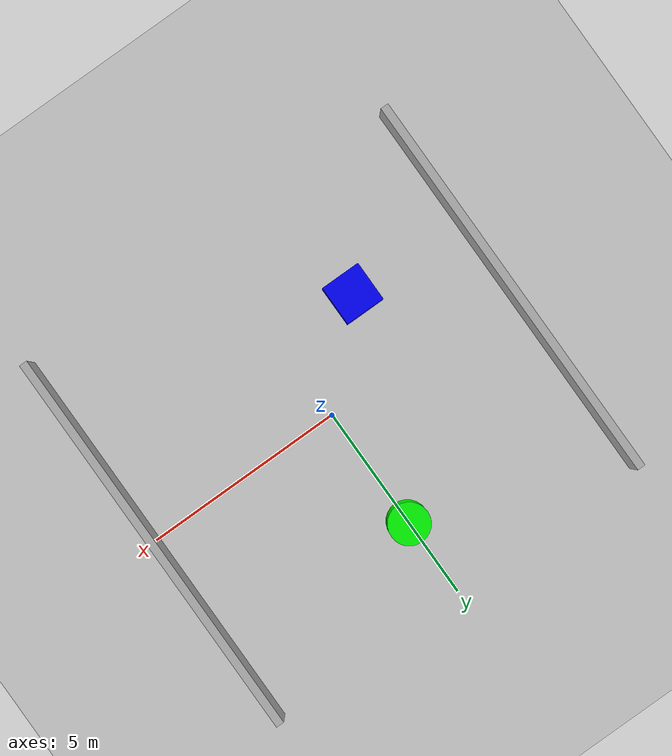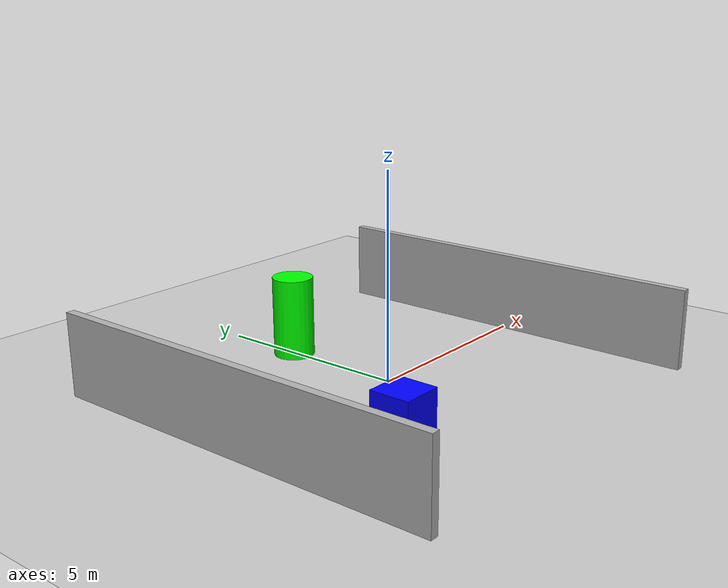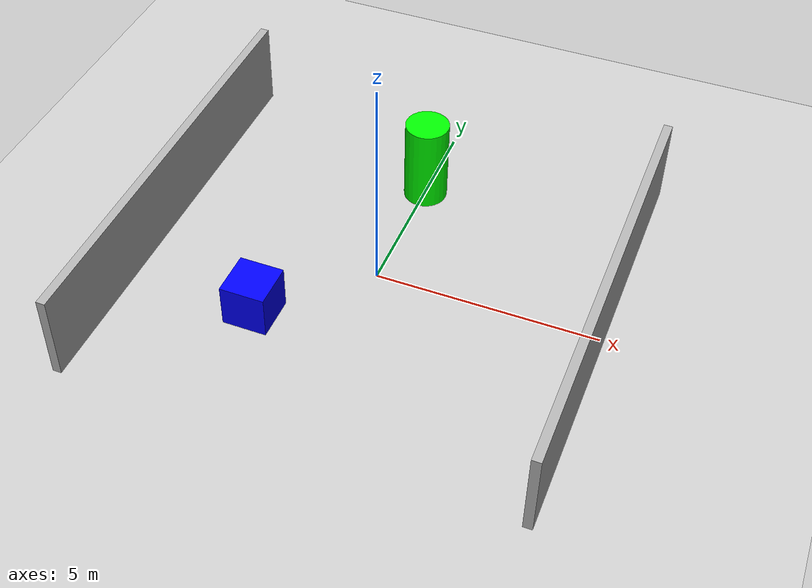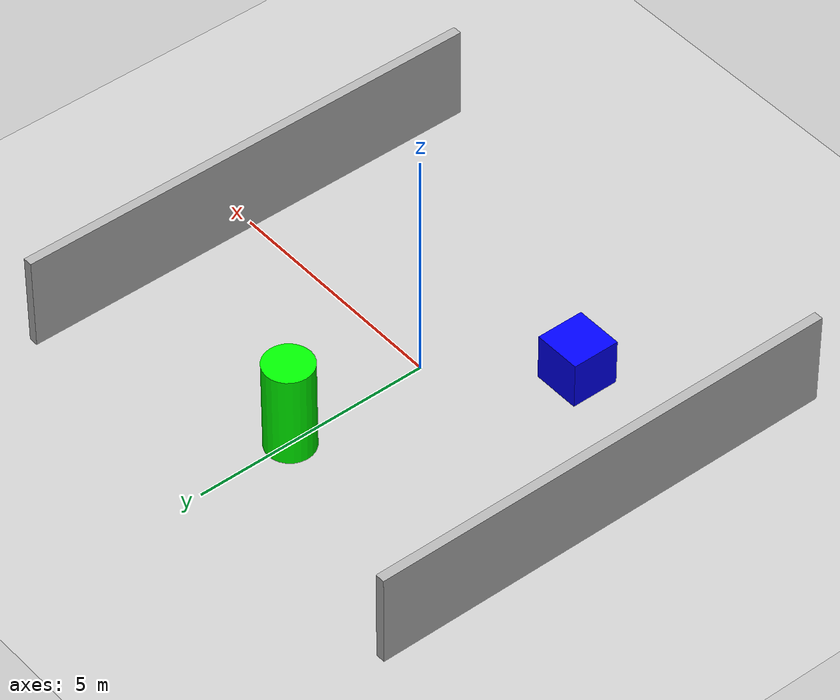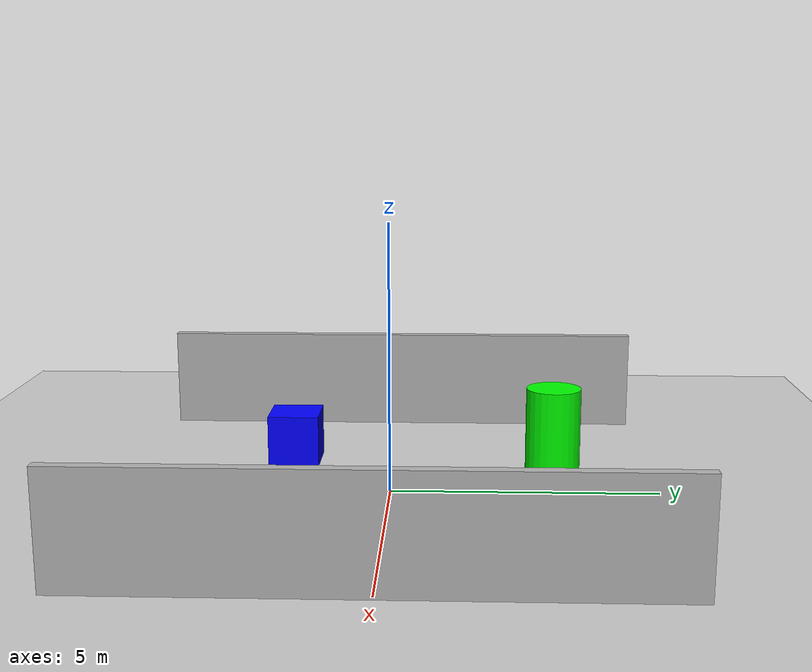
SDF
<?xml version="1.0"?>
<sdf version="1.6">
  <world name="obstacle_world">

    <!-- Ánh sáng -->
    <include>
      <uri>model://sun</uri>
    </include>

    <!-- Mặt đất -->
    <include>
      <uri>model://ground_plane</uri>
    </include>

    <!-- Tường 1 -->
    <model name="wall_1">
      <pose>5 0 1 0 0 0</pose>
      <static>true</static>
      <link name="link">
        <collision name="collision">
          <geometry>
            <box>
              <size>0.2 10 2</size>
            </box>
          </geometry>
        </collision>
        <visual name="visual">
          <geometry>
            <box>
              <size>0.2 10 2</size>
            </box>
          </geometry>
          <material>
            <ambient>0.7 0.7 0.7 1</ambient>
          </material>
        </visual>
      </link>
    </model>

    <!-- Tường 2 -->
    <model name="wall_2">
      <pose>-5 0 1 0 0 0</pose>
      <static>true</static>
      <link name="link">
        <collision name="collision">
          <geometry>
            <box>
              <size>0.2 10 2</size>
            </box>
          </geometry>
        </collision>
        <visual name="visual">
          <geometry>
            <box>
              <size>0.2 10 2</size>
            </box>
          </geometry>
          <material>
            <ambient>0.7 0.7 0.7 1</ambient>
          </material>
        </visual>
      </link>
    </model>

    <!-- Hộp vật cản 2 -->
    <model name="box_2">
      <pose>-2 -2 0.5 0 0 0</pose>
      <static>true</static>
      <link name="link">
        <collision name="collision">
          <geometry>
            <box>
              <size>1 1 1</size>
            </box>
          </geometry>
        </collision>
        <visual name="visual">
          <geometry>
            <box>
              <size>1 1 1</size>
            </box>
          </geometry>
          <material>
            <ambient>0 0 1 1</ambient>
          </material>
        </visual>
      </link>
    </model>

    <!-- Cột tròn -->
    <model name="cylinder_1">
      <pose>0 3 1 0 0 0</pose>
      <static>true</static>
      <link name="link">
        <collision name="collision">
          <geometry>
            <cylinder>
              <radius>0.5</radius>
              <length>2</length>
            </cylinder>
          </geometry>
        </collision>
        <visual name="visual">
          <geometry>
            <cylinder>
              <radius>0.5</radius>
              <length>2</length>
            </cylinder>
          </geometry>
          <material>
            <ambient>0 1 0 1</ambient>
          </material>
        </visual>
      </link>
    </model>

    <!-- Physics -->
    <physics type="ode">
      <max_step_size>0.001</max_step_size>
      <real_time_factor>1</real_time_factor>
      <real_time_update_rate>1000</real_time_update_rate>
      <gravity>0 0 -9.81</gravity>
    </physics>

  </world>
</sdf>
